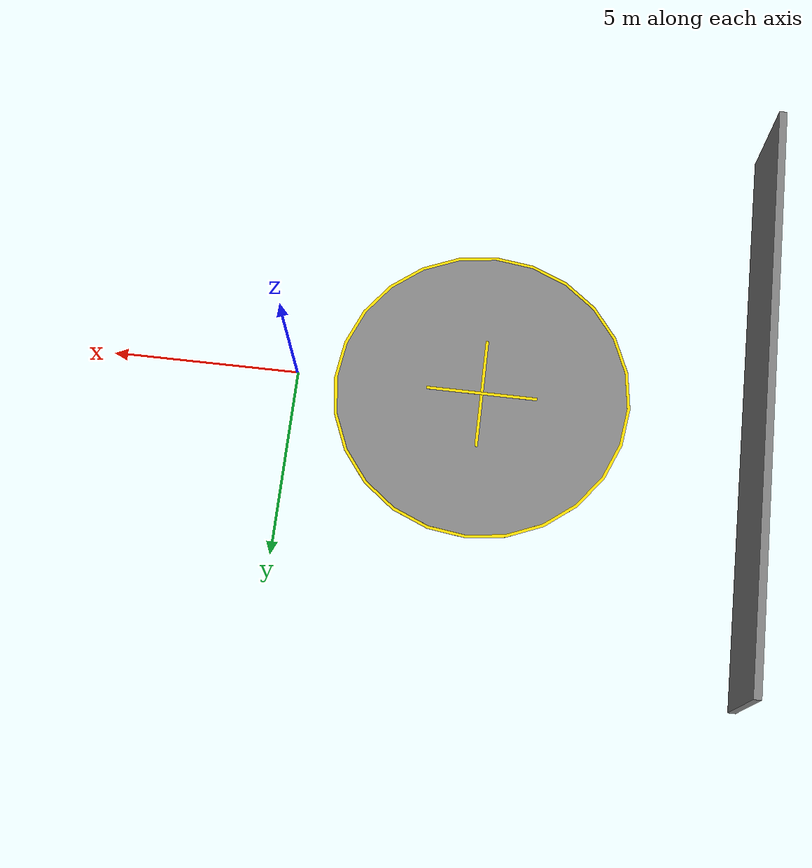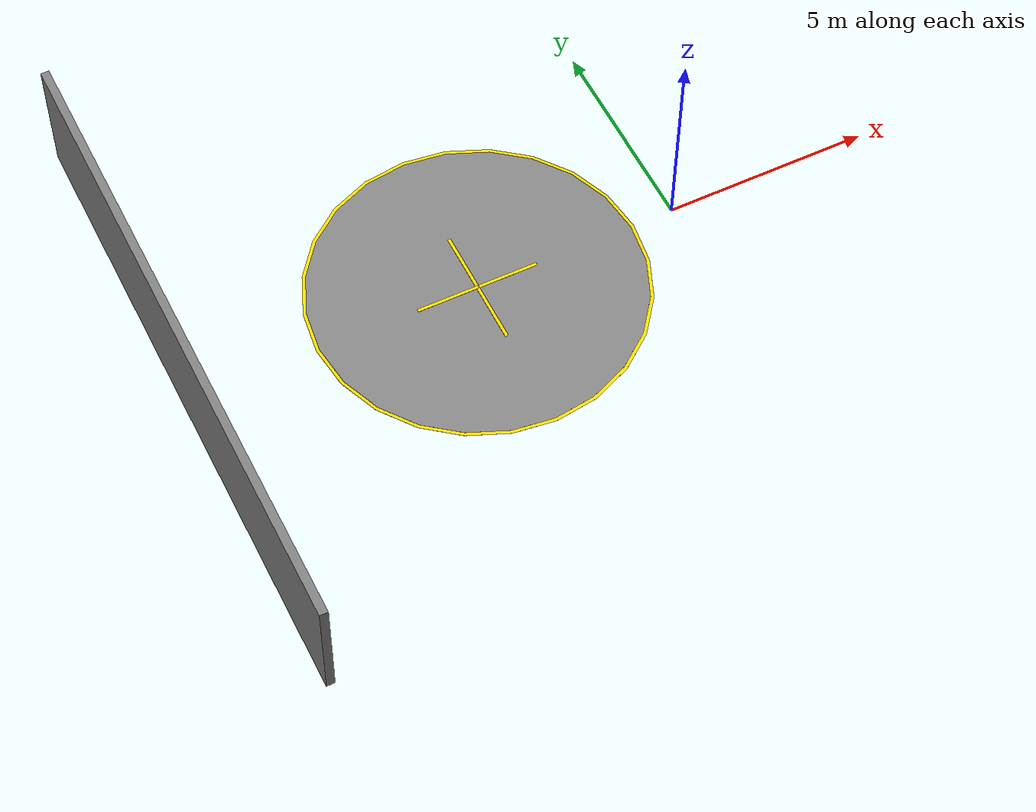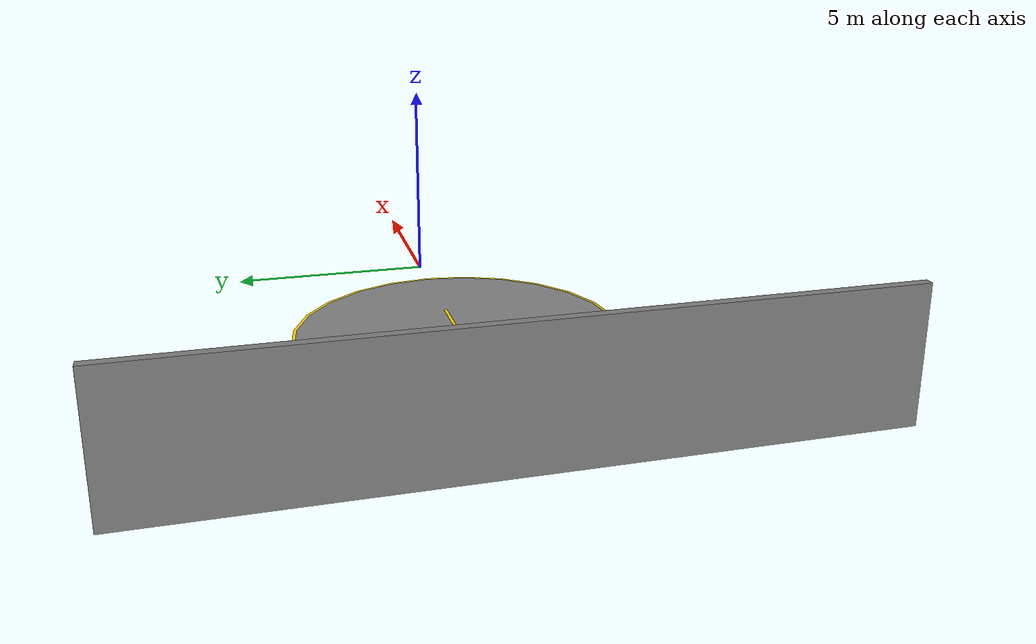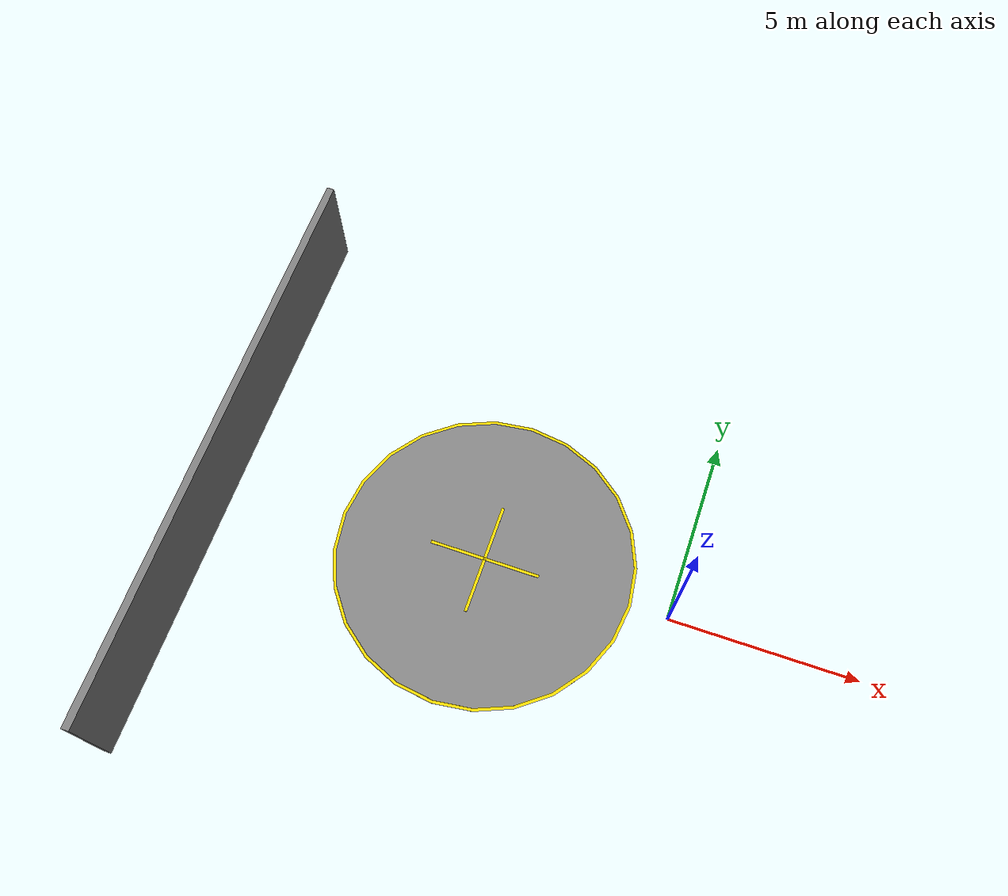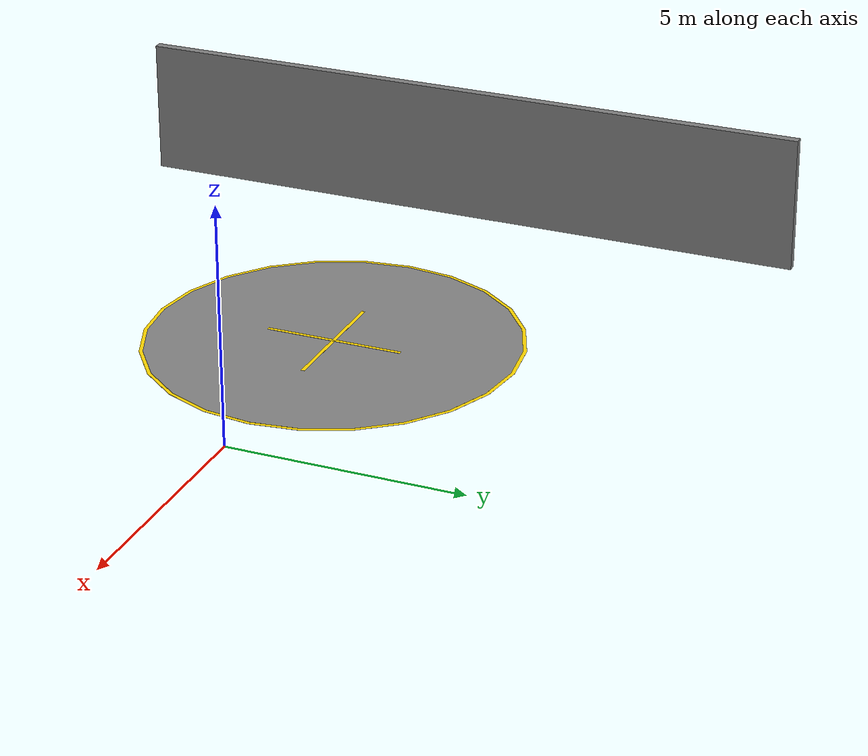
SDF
<sdf version="1.9">
 <world name="drone_garage_pigeon_3d">
  <model name="ground_plane">
   <static>true</static>
   <link name="link">
    <collision name="collision">
     <geometry><plane><normal>0 0 1</normal><size>24.0 15.0</size></plane></geometry>
    </collision>
   </link>
  </model>
  <model name="pad_1_ring">
   <static>true</static>
   <pose>-5 0 0.003 0 0 0</pose>
   <link name="link">
    <visual name="v">
     <geometry><cylinder><radius>4.0</radius><length>0.002</length></cylinder></geometry>
     <material><ambient>1.0 0.85 0.0 1</ambient><diffuse>1.0 0.85 0.0 1</diffuse></material>
    </visual>
   </link>
  </model>
  <model name="pad_1_fill">
   <static>true</static>
   <pose>-5 0 0.004 0 0 0</pose>
   <link name="link">
    <visual name="v">
     <geometry><cylinder><radius>3.92</radius><length>0.002</length></cylinder></geometry>
     <material><ambient>0.52 0.52 0.52 1</ambient><diffuse>0.52 0.52 0.52 1</diffuse></material>
    </visual>
   </link>
  </model>
  <model name="pad_1_cross_h">
   <static>true</static>
   <pose>-5 0 0.006 0 0 0</pose>
   <link name="link">
    <visual name="v">
     <geometry><box><size>3.0 0.08 0.002</size></box></geometry>
     <material><ambient>1.0 0.85 0.0 1</ambient><diffuse>1.0 0.85 0.0 1</diffuse></material>
    </visual>
   </link>
  </model>
  <model name="pad_1_cross_v">
   <static>true</static>
   <pose>-5 0 0.006 0 0 0</pose>
   <link name="link">
    <visual name="v">
     <geometry><box><size>0.08 3.0 0.002</size></box></geometry>
     <material><ambient>1.0 0.85 0.0 1</ambient><diffuse>1.0 0.85 0.0 1</diffuse></material>
    </visual>
   </link>
  </model>
  <model name="wall_south">
   <static>true</static>
   <pose>-12.1 0 1.5 0 0 0</pose>
   <link name="link">
    <collision name="c"><geometry><box><size>0.2 15.4 3.0</size></box></geometry></collision>
    <visual name="v">
     <geometry><box><size>0.2 15.4 3.0</size></box></geometry>
     <material><ambient>0.50 0.50 0.50 1</ambient><diffuse>0.50 0.50 0.50 1</diffuse></material>
    </visual>
   </link>
  </model>
 </world>
</sdf>
